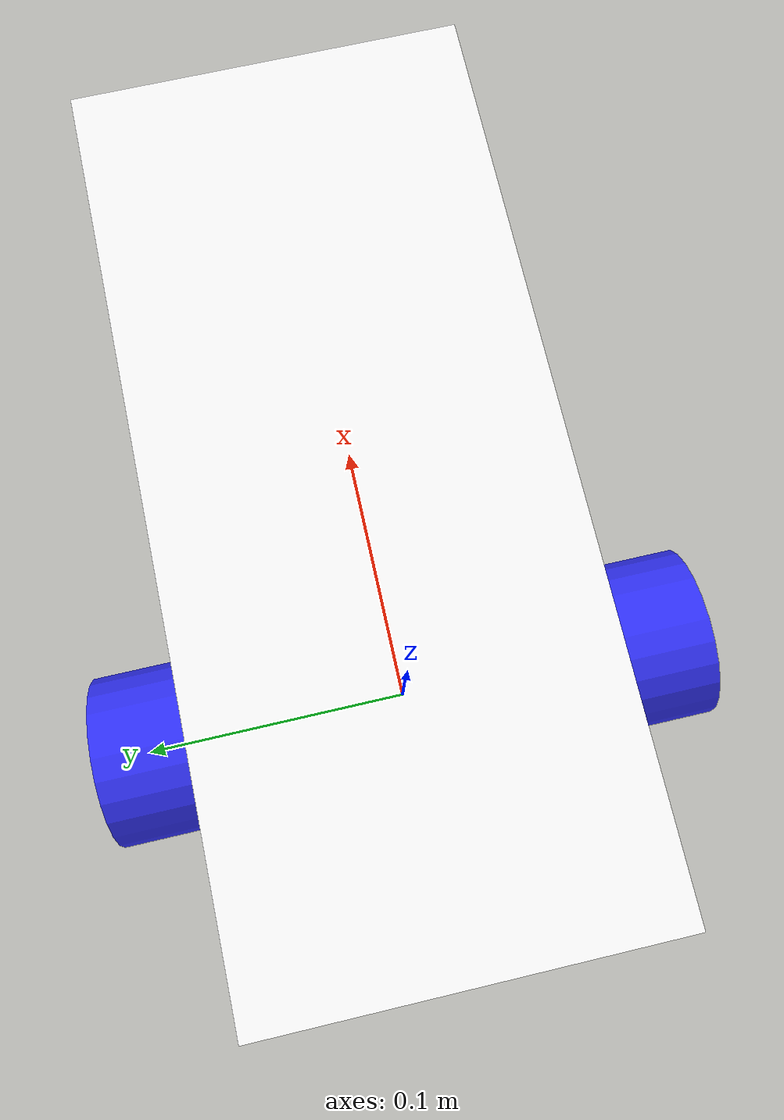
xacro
<?xml version="1.0"?>
<robot xmlns:xacro="http://www.ros.org/wiki/xacro">
    <xacro:include filename="inertial_macros.xacro"/>
    <material name="white">
        <color rgba="1 1 1 1" />
    </material>

    <material name="orange">
        <color rgba="1 0.3 0.1 1" />
    </material>

    <material name="blue">
        <color rgba="0.2 0.2 1 1" />
    </material>

    <material name="black">
        <color rgba="0 0 0 1" />
    </material>

    <material name="red">
        <color rgba="1 0 0 1" />
    </material>

    <!-- BASE LINK -->
    <link name="base_link">

    </link>

    <joint name="base_footprint_joint" type="fixed">
        <parent link="base_link"/>
        <child link="base_footprint"/>
        <origin xyz="0 0 0" rpy="0 0 0"/>
    </joint>

    <link name="base_footprint">
    </link>

    <!-- CHASSIS LINK  -->
    <joint name="chassis_joint" type="fixed">
        <parent link="base_link"/>
        <child link="chassis"/>
        <origin xyz="-0.1 0 0"/>
    </joint>

    <link name="chassis">
        <visual>
            <origin xyz="0.175 0 0.0275"/>
            <geometry>
                <box size ="0.35 0.155 0.055"/>
            </geometry>
            <material name="white"/>
        </visual>
        <collision>
            <origin xyz="0.175 0 0.0275"/>
            <geometry>
                <box size ="0.35 0.155 0.055"/>
            </geometry>
        </collision>
        <xacro:inertial_box mass="0.5" x="0.35" y="0.155" z="0.055">
            <origin xyz="0.175 0 0.0275" rpy="0 0 0"/>
        </xacro:inertial_box>
    </link>

    <gazebo reference="chassis">
        <material>Gazebo/White</material>
    </gazebo>

    <!-- LEFT WHEEL LINK -->
    <joint name="left_wheel_joint" type = "continuous">
        <parent link="base_link"/>
        <child link ="left_wheel"/>
        <origin xyz = "0 0.09525 0" rpy="-${pi/2} 0 0"/>
        <axis xyz ="0 0 1"/>
    </joint>

    <link name="left_wheel">
        <visual>
            <geometry>
                <cylinder radius="0.0325" length="0.04"/>
            </geometry>
            <material name="blue"/>
        </visual>
        <collision>
            <geometry>
                <sphere radius="0.0325"/>
            </geometry>
            <material name="blue"/>
        </collision>
        <xacro:inertial_cylinder mass ="0.1" length="0.04" radius="0.0325">
            <origin xyz ="0 0 0" rpy="0 0 0"/>
        </xacro:inertial_cylinder>
    </link>

    <gazebo reference="left_wheel">
        <material>Gazebo/Blue</material>
    </gazebo>

    <!-- RIGHT WHEEL LINK -->
    <joint name="right_wheel_joint" type = "continuous">
        <parent link="base_link"/>
        <child link ="right_wheel"/>
        <origin xyz = "0 -0.09525 0" rpy="${pi/2} 0 0"/>
        <axis xyz ="0 0 -1"/>
    </joint>

    <link name="right_wheel">
        <visual>
            <geometry>
                <cylinder radius="0.0325" length="0.04"/>
            </geometry>
            <material name="blue"/>
        </visual>
        <collision>
            <geometry>
                <sphere radius="0.0325"/>
            </geometry>
            <material name="blue"/>
        </collision>
        <xacro:inertial_cylinder mass ="0.1" length="0.04" radius="0.0325">
            <origin xyz ="0 0 0" rpy="0 0 0"/>
        </xacro:inertial_cylinder>
    </link>

    <gazebo reference="right_wheel">
        <material>Gazebo/Blue</material>
    </gazebo>

    <!-- CASTER WHEEL LINK -->
    <joint name="caster_wheel_joint" type="fixed">
        <parent link="chassis"/>
        <child link="caster_wheel"/>
        <origin xyz="0.29 0 0"/>
    </joint>

    <link name="caster_wheel">
        <visual>
            <geometry>
                <sphere radius="0.0325"/>
            </geometry>
            <material name="black"/>
        </visual>
        <collision>
            <geometry>
                <sphere radius="0.0325"/>
            </geometry>
            <material name="black"/>
        </collision>
        <xacro:inertial_sphere mass="0.1" radius="0.0325">
            <origin xyz ="0 0 0" rpy="0 0 0"/>
        </xacro:inertial_sphere>
    </link>

    <gazebo reference="caster_wheel">
        <material>Gazebo/Black</material>
        <mu1 value="0.001"/>
        <mu2 value="0.002"/>
    </gazebo>

</robot>
